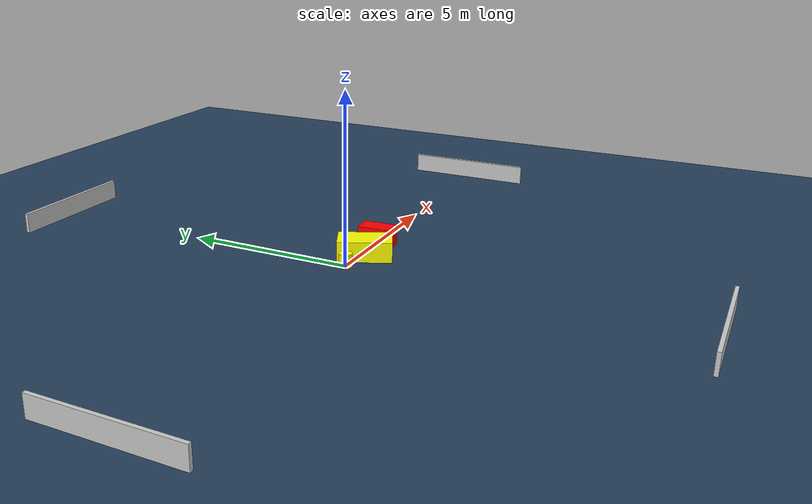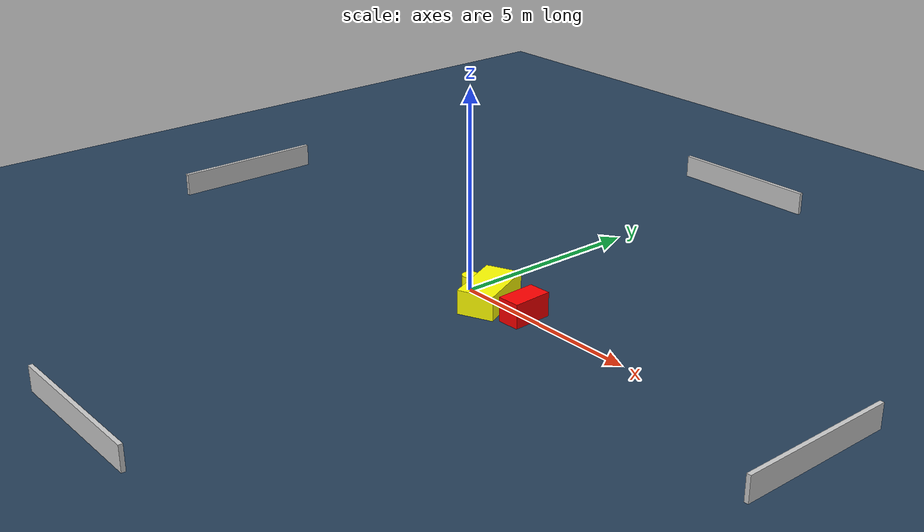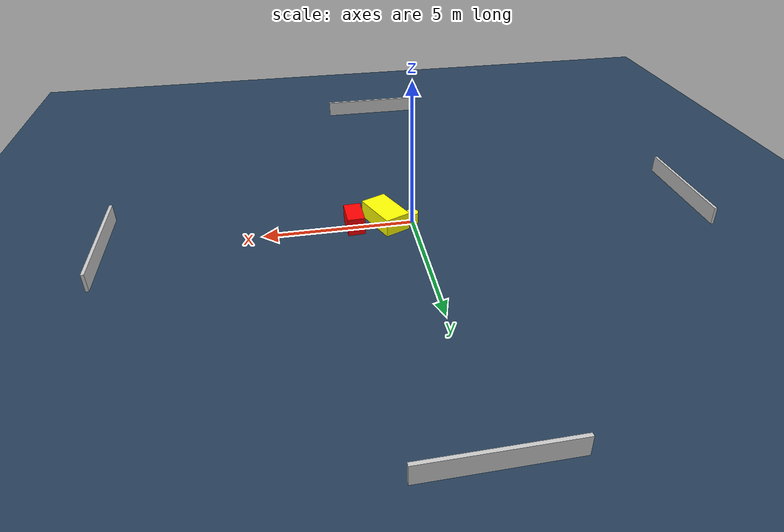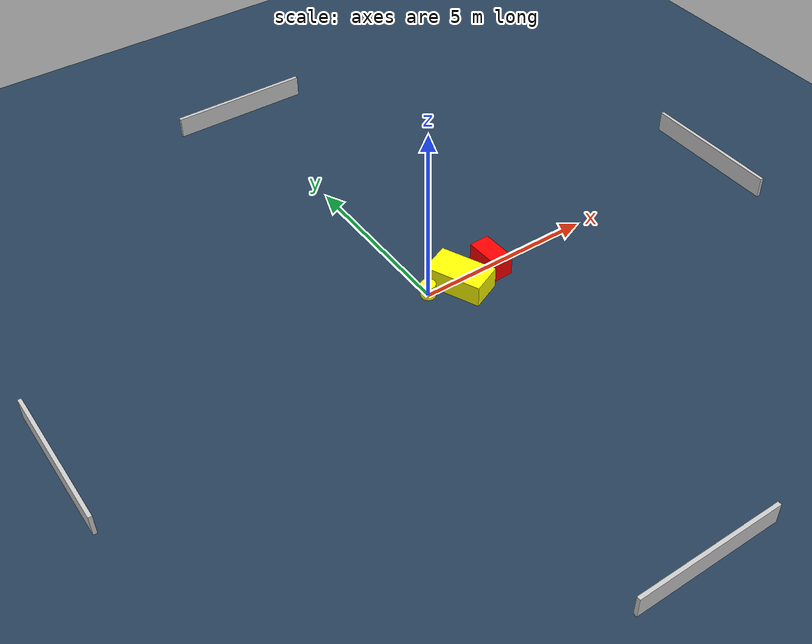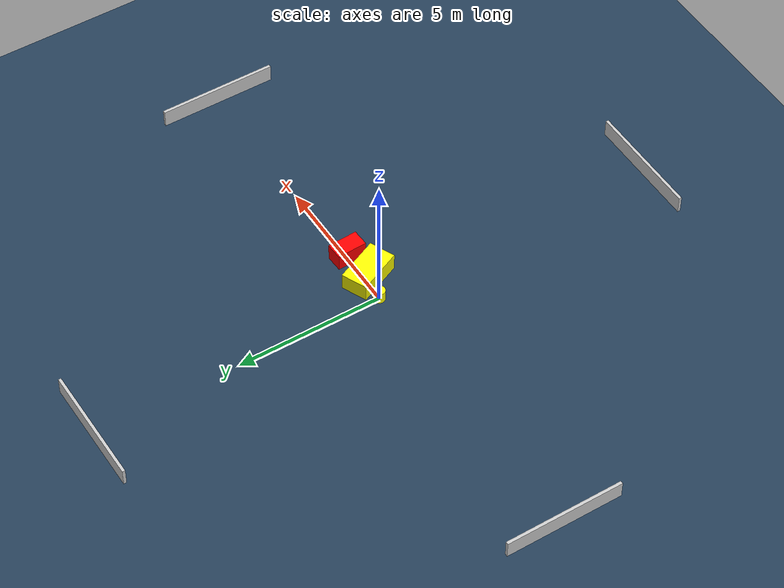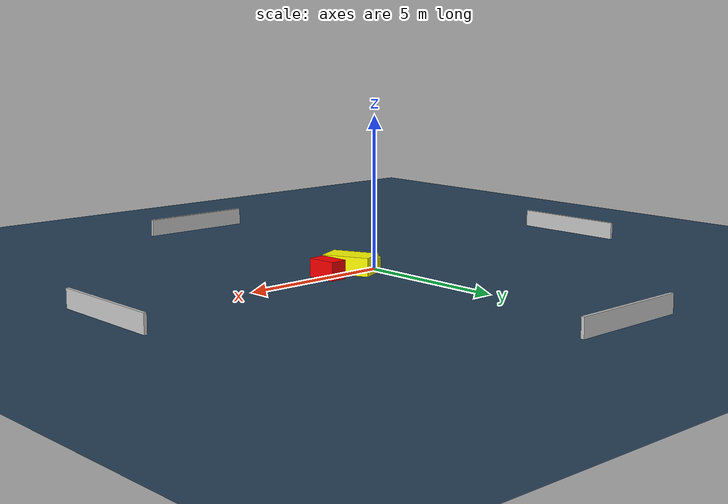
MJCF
<?xml version="1.0" ?>
<mujoco model="generated_environment">
  <option timestep="0.01" integrator="RK4" cone="elliptic"/>
  <default>
    <geom density="1"/>
  </default>
  <asset>
    <texture builtin="gradient" height="3072" name="skybox" rgb1="0.3 0.5 0.7" rgb2="0 0 0" type="skybox" width="512"/>
    <texture builtin="checker" height="300" name="groundplane" rgb1="0.2 0.3 0.4" rgb2="0.1 0.2 0.3" type="2d" width="300"/>
    <material name="groundplane" reflectance="0.2" texrepeat="5 5" texture="groundplane"/>
  </asset>
  <worldbody>
    <light dir="0 0 -1" directional="true" pos="0 0 1.5"/>
    <geom condim="3" friction="0.5 0.005 0.001" material="groundplane" name="floor" pos="0 0 0" size="0 0 0.05" type="plane"/>
    <body name="walls">
      <geom name="wall_1" condim="4" pos="-10.0 0.0 0.3" rgba="0.800000011920929 0.800000011920929 0.800000011920929 1.0" size="0.05 2.0 0.3" type="box"/>
      <geom name="wall_2" condim="4" pos="10.0 0.0 0.3" rgba="0.800000011920929 0.800000011920929 0.800000011920929 1.0" size="0.05 2.0 0.3" type="box"/>
      <geom name="wall_3" condim="4" pos="0.0 -10.0 0.3" rgba="0.800000011920929 0.800000011920929 0.800000011920929 1.0" size="2.0 0.05 0.3" type="box"/>
      <geom name="wall_4" condim="4" pos="0.0 10.0 0.3" rgba="0.800000011920929 0.800000011920929 0.800000011920929 1.0" size="2.0 0.05 0.3" type="box"/>
    </body>
    <body name="robot">
      <joint name="joint_x" type="slide" pos="0 0 0" axis="1 0 0"/>
      <joint name="joint_y" type="slide" pos="0 0 0" axis="0 1 0"/>
      <geom name="robot" type="cylinder" pos="0.0 0.0 0.2" size="0.2 0.2 0.0" mass="5.0" friction="1.0 0.005 0.0001" condim="4" rgba="1.0 1.0 0.0 1.0"/>
    </body>
    <body name="obstacle_1_movable">
      <geom name="obstacle_1_movable" condim="4" pos="0.8945746319761105 -0.16396949453048568 0.3" euler="0 0 114.10053379705408" friction="0.0 0.005 0.001" rgba="1.0 1.0 0.0 1.0" size="0.7897776202223259 0.4484560024298543 0.3" type="box" mass="0.1"/>
      <joint type="free"/>
    </body>
    <body name="obstacle_2_static">
      <geom name="obstacle_2_static" condim="4" pos="1.9652585939633522 -0.05923256667435819 0.3" euler="0 0 272.71889346093985" friction="0.0 0.005 0.001" rgba="1.0 0.0 0.0 1.0" size="0.5060089643715188 0.2862835651296502 0.3" type="box"/>
    </body>
  </worldbody>
  <actuator>
    <motor name="actuator_x" joint="joint_x" gear="1" ctrlrange="-1 1"/>
    <motor name="actuator_y" joint="joint_y" gear="1" ctrlrange="-1 1"/>
  </actuator>
</mujoco>
